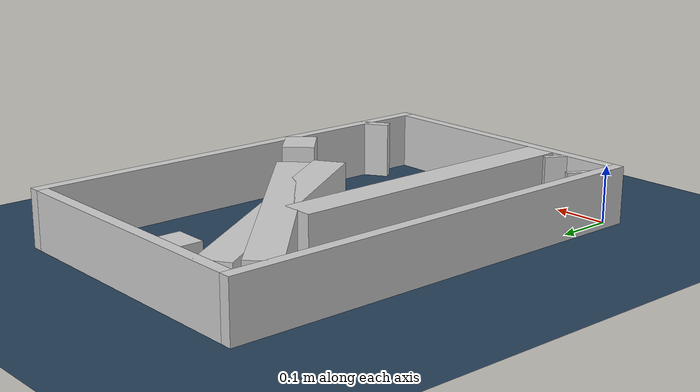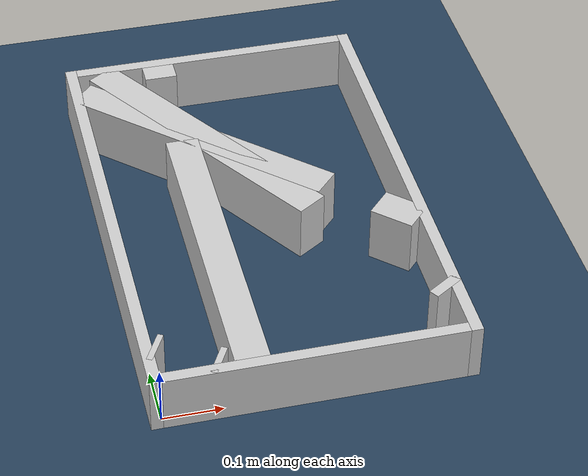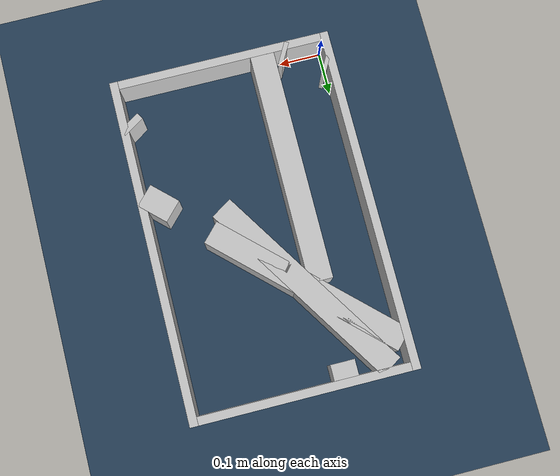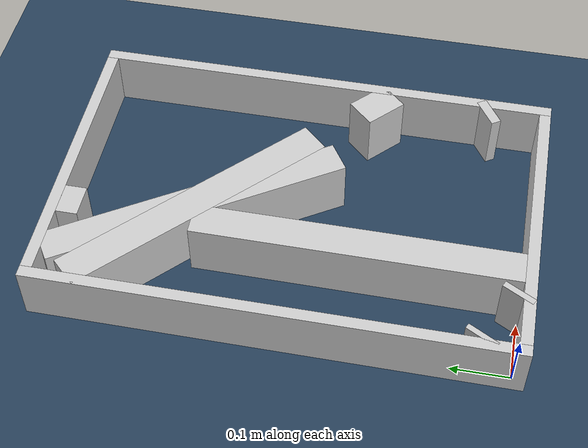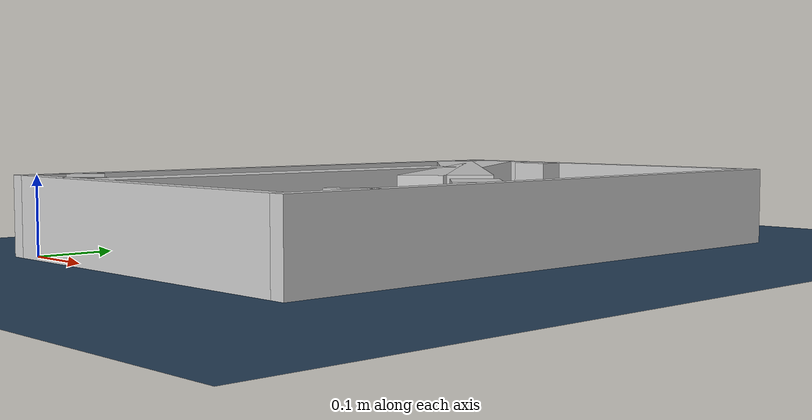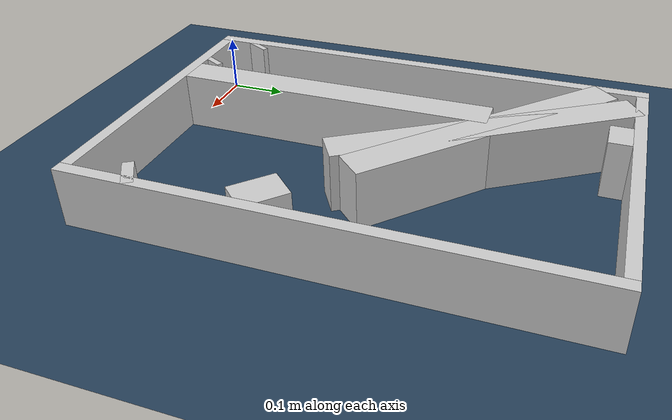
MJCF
<?xml version="1.0" ?>
<mujoco model="generated_real_template">
  <compiler angle="degree"/>
  <option timestep="0.002" integrator="implicitfast" iterations="100" cone="elliptic"/>
  <default>
    <geom density="1"/>
  </default>
  <asset>
    <texture builtin="gradient" height="3072" rgb1="0.3 0.5 0.7" rgb2="0 0 0" type="skybox" width="512"/>
    <texture builtin="checker" height="300" mark="edge" markrgb="0.8 0.8 0.8" name="groundplane" rgb1="0.2 0.3 0.4" rgb2="0.1 0.2 0.3" type="2d" width="300"/>
    <material name="groundplane" reflectance="0.2" texrepeat="5 5" texture="groundplane" texuniform="true"/>
  </asset>
  <worldbody>
    <light dir="0 0 -1" directional="true" pos="0 0 1.5"/>
    <geom name="floor" type="plane" condim="4" friction="0.5 0.005 0.001" material="groundplane" size="0 0 0.05"/>
    <body name="walls">
      <geom name="wall_boundary_left" type="box" condim="4" friction="1.0 0.005 0.0001" rgba="0.8 0.8 0.8 1" pos="-0.010000 0.387500 0.050000" euler="0 0 0.000000" size="0.010000 0.407500 0.050000"/>
      <geom name="wall_boundary_right" type="box" condim="4" friction="1.0 0.005 0.0001" rgba="0.8 0.8 0.8 1" pos="0.500000 0.387500 0.050000" euler="0 0 0.000000" size="0.010000 0.407500 0.050000"/>
      <geom name="wall_boundary_bottom" type="box" condim="4" friction="1.0 0.005 0.0001" rgba="0.8 0.8 0.8 1" pos="0.245000 -0.010000 0.050000" euler="0 0 0.000000" size="0.245000 0.010000 0.050000"/>
      <geom name="wall_boundary_top" type="box" condim="4" friction="1.0 0.005 0.0001" rgba="0.8 0.8 0.8 1" pos="0.245000 0.785000 0.050000" euler="0 0 0.000000" size="0.245000 0.010000 0.050000"/>
      <geom name="wall_inner_1_1" type="box" condim="4" friction="1.0 0.005 0.0001" rgba="0.8 0.8 0.8 1" pos="0.462183 0.287256 0.050000" euler="0 0 136.593014" size="0.038290 0.028500 0.050000"/>
      <geom name="wall_inner_1_2" type="box" condim="4" friction="1.0 0.005 0.0001" rgba="0.8 0.8 0.8 1" pos="0.181323 0.552918 0.050000" euler="0 0 136.593014" size="0.249587 0.028500 0.050000"/>
      <geom name="wall_inner_2_1" type="box" condim="4" friction="1.0 0.005 0.0001" rgba="0.8 0.8 0.8 1" pos="0.145747 0.274913 0.050000" euler="0 0 89.879849" size="0.274913 0.028500 0.050000"/>
      <geom name="wall_inner_2_2" type="box" condim="4" friction="1.0 0.005 0.0001" rgba="0.8 0.8 0.8 1" pos="0.146756 0.756348 0.050000" euler="0 0 89.879849" size="0.018652 0.028500 0.050000"/>
      <geom name="wall_inner_3_1" type="box" condim="4" friction="1.0 0.005 0.0001" rgba="0.8 0.8 0.8 1" pos="0.184206 0.553892 0.050000" euler="0 0 -57.410174" size="0.262427 0.028500 0.050000"/>
      <geom name="wall_inner_3_2" type="box" condim="4" friction="1.0 0.005 0.0001" rgba="0.8 0.8 0.8 1" pos="0.481191 0.089328 0.050000" euler="0 0 -57.410174" size="0.008903 0.028500 0.050000"/>
      <geom name="wall_inner_4_1" type="box" condim="4" friction="1.0 0.005 0.0001" rgba="0.8 0.8 0.8 1" pos="0.094661 0.007604 0.050000" euler="0 0 151.158528" size="0.005469 0.028500 0.050000"/>
      <geom name="wall_inner_4_2" type="box" condim="4" friction="1.0 0.005 0.0001" rgba="0.8 0.8 0.8 1" pos="0.004297 0.057367 0.050000" euler="0 0 151.158528" size="0.004906 0.028500 0.050000"/>
    </body>
  </worldbody>
</mujoco>
